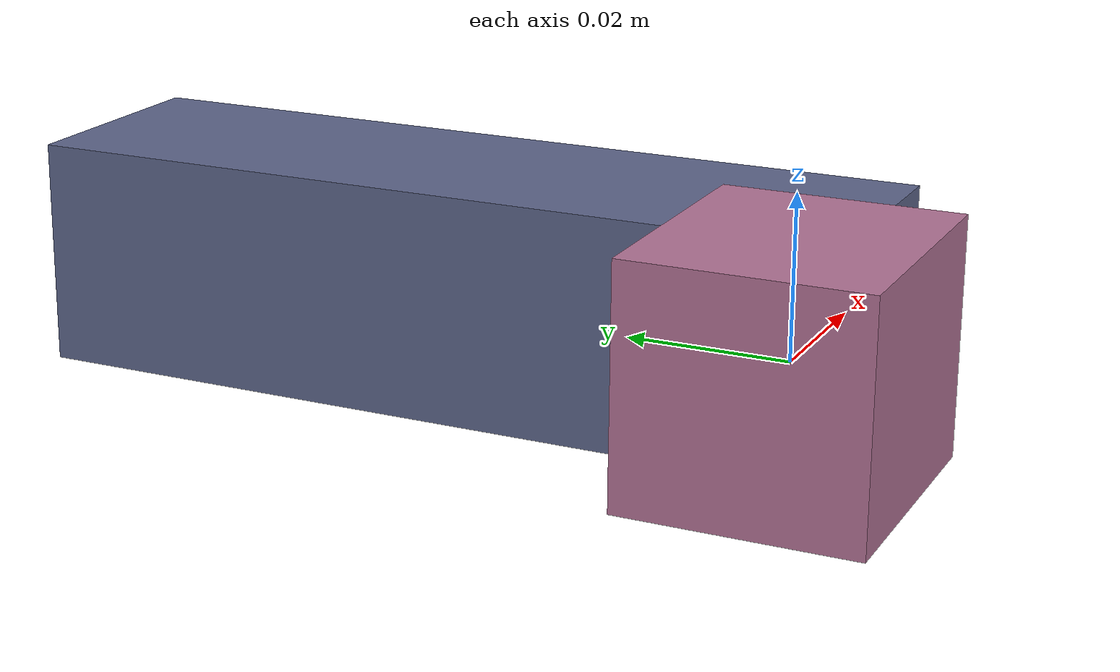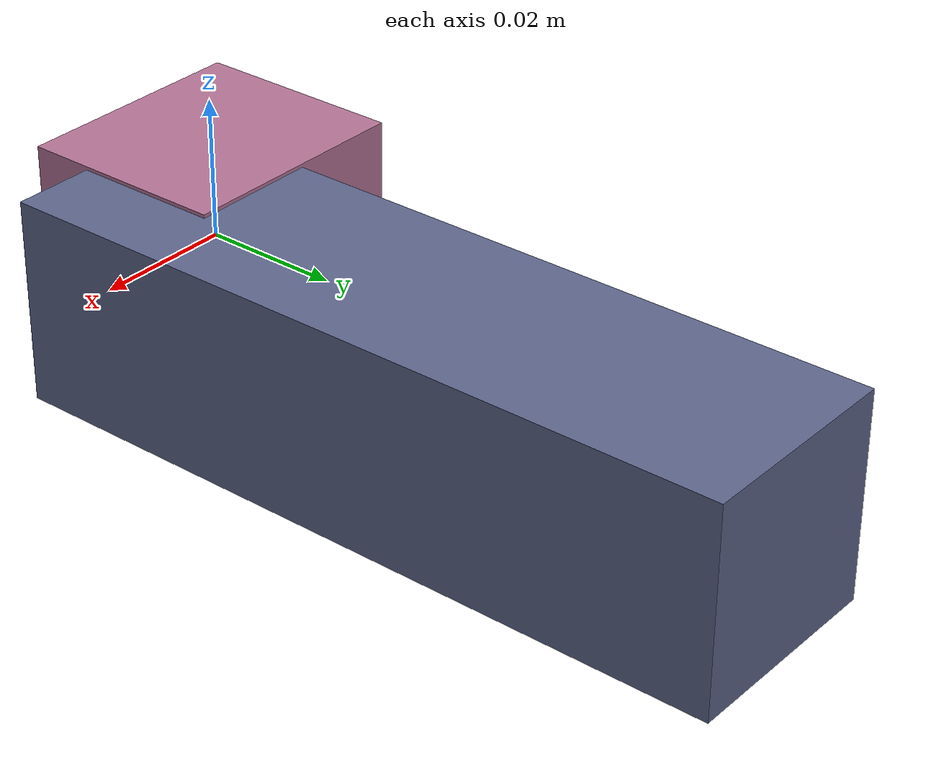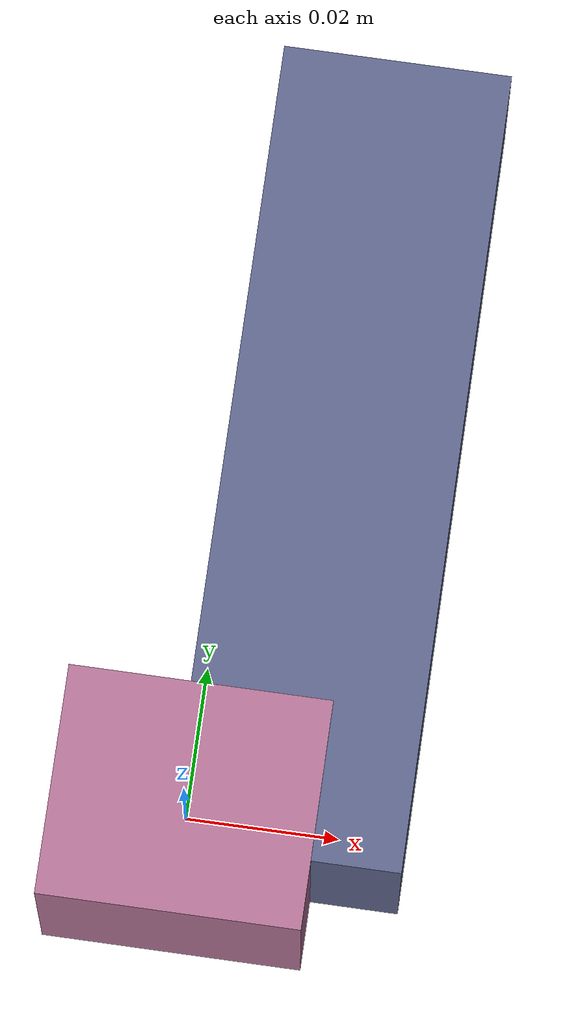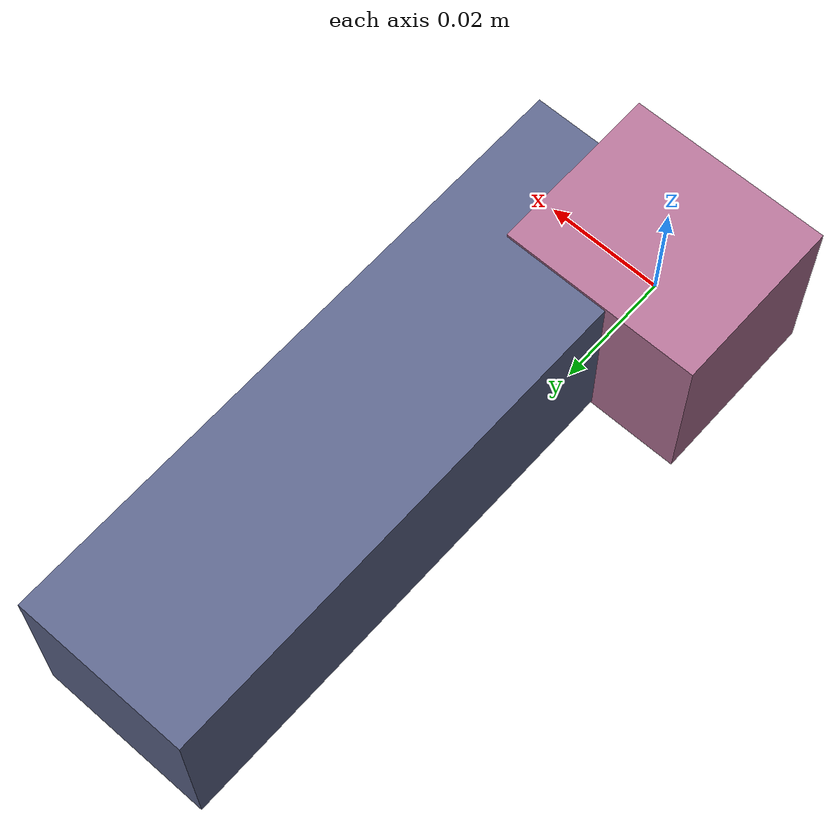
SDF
<sdf version="1.4"><world name="default"><model name="object0"><link name="link1"><pose>0 0 0 0 0 0</pose><inertial><pose>0 0 0 0 0 0</pose><mass>0.018442643899352084</mass><inertia><ixx>2.7663965849028124e-06</ixx><ixy>0</ixy><iyy>3.175870050156234e-06</iyy><ixz>0</ixz><iyz>0</iyz><izz>3.175870050156234e-06</izz></inertia></inertial><visual name="link1_visual"><pose>0 0  0 0 0 0</pose><geometry><box><size>0.034153044258059415 0.03 0.03</size></box></geometry><material><diffuse>0.7008983221187088 0.44945335480088394 0.5879603424100623 1</diffuse></material></visual><collision><pose>0 0  0 0 0 0</pose><geometry><box><size>0.034153044258059415 0.03 0.03</size></box></geometry></collision></link><link name="link2"><pose>0.013689958010445157 0.04745156708398486 0 0 0 0</pose><inertial><pose>0 0 0 0 0 0</pose><mass>0.057635151897182435</mass><inertia><ixx>5.8752645546569395e-05</ixx><ixy>0</ixy><iyy>8.361899954416218e-06</iyy><ixz>0</ixz><iyz>0</iyz><izz>5.903601837673054e-05</izz></inertia></inertial><visual name="link2_visual"><pose>0 0  0 0 0 0</pose><geometry><box><size>0.03 0.10673176277256008 0.028999999999999998</size></box></geometry><material><diffuse>0.36354496514455176 0.39692336266661327 0.543127950651702 1</diffuse></material></visual><collision><pose>0 0  0 0 0 0</pose><geometry><box><size>0.03 0.10673176277256008 0.028999999999999998</size></box></geometry></collision></link><joint name="link_joint_0" type="fixed"><parent>link1</parent><child>link2</child><pose>0 0 0 0 0 0</pose><axis><xyz>0 0 1</xyz></axis></joint></model></world></sdf>
